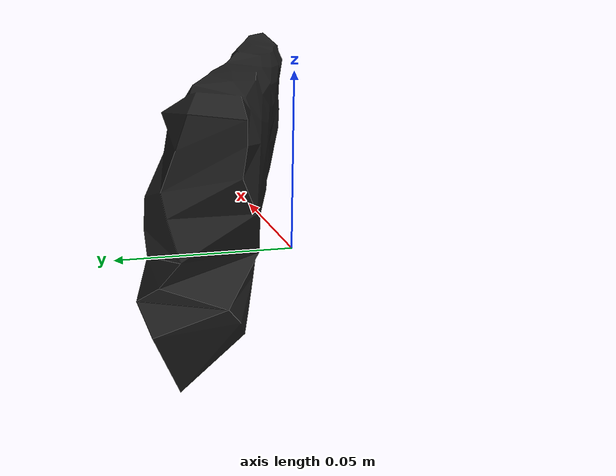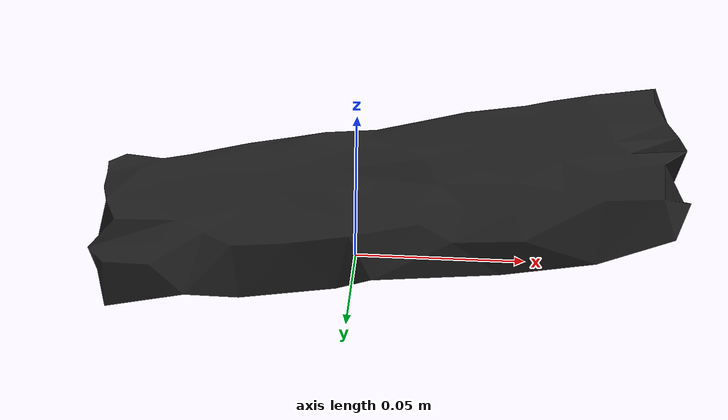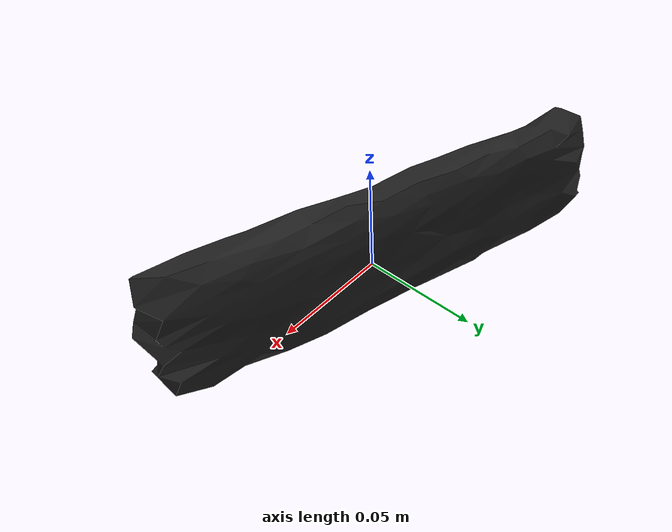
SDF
<?xml version="1.0" ?>
<sdf version="1.4">
  <model name="paper_mate_12_count_mirado_black_warrior">
    <link name="paper_mate_12_count_mirado_black_warrior_link">
      <inertial>
        <pose>0 0 0 0 0 0</pose>
        <mass>0.08</mass>
      </inertial>

      <visual name="paper_mate_12_count_mirado_black_warrior_visual">
        <pose>0 0 0 0 0 0</pose>
        <material>
          <script>
            <uri>model://paper_mate_12_count_mirado_black_warrior/materials/scripts</uri>
            <uri>model://paper_mate_12_count_mirado_black_warrior/materials/textures</uri>
            <name>paper_mate_12_count_mirado_black_warrior</name>
          </script>
        </material>
        <geometry>
          <mesh>
            <uri>model://paper_mate_12_count_mirado_black_warrior/meshes/paper_mate_12_count_mirado_black_warrior.dae</uri>
          </mesh>
        </geometry>
      </visual>

      <collision name="paper_mate_12_count_mirado_black_warrior_collision">
        <pose>0 0 0 0 0 0</pose>
        <geometry>
          <mesh>
            <uri>model://paper_mate_12_count_mirado_black_warrior/meshes/paper_mate_12_count_mirado_black_warrior.dae</uri>
          </mesh>
        </geometry>
        <surface>
          <friction>
            <ode>
              <mu>0.8</mu>
              <mu2>0.8</mu2>
            </ode>
          </friction>
        </surface>
      </collision>

    </link>
  </model>
</sdf>
